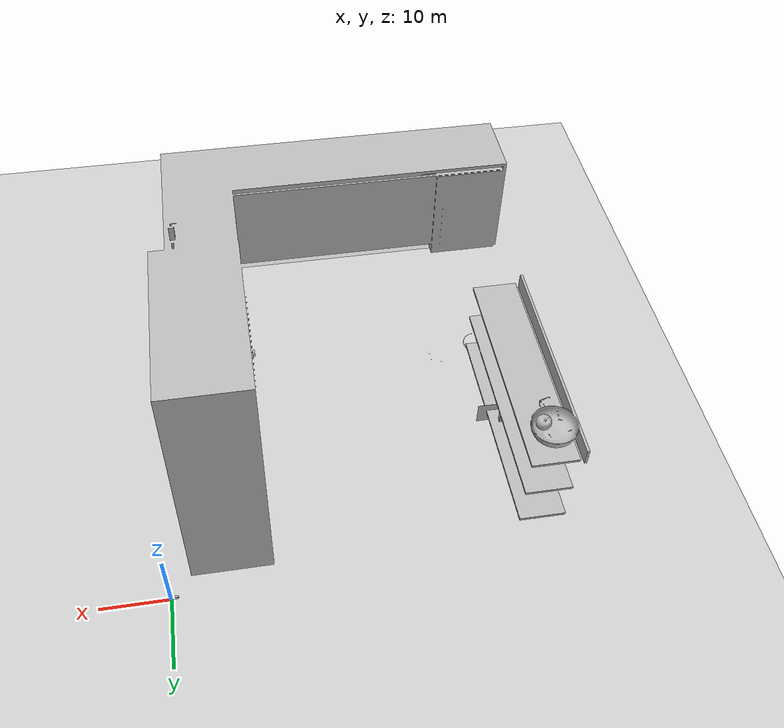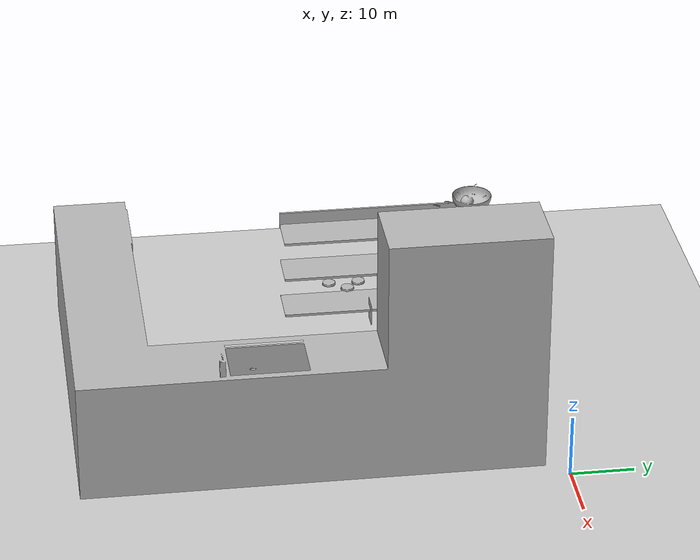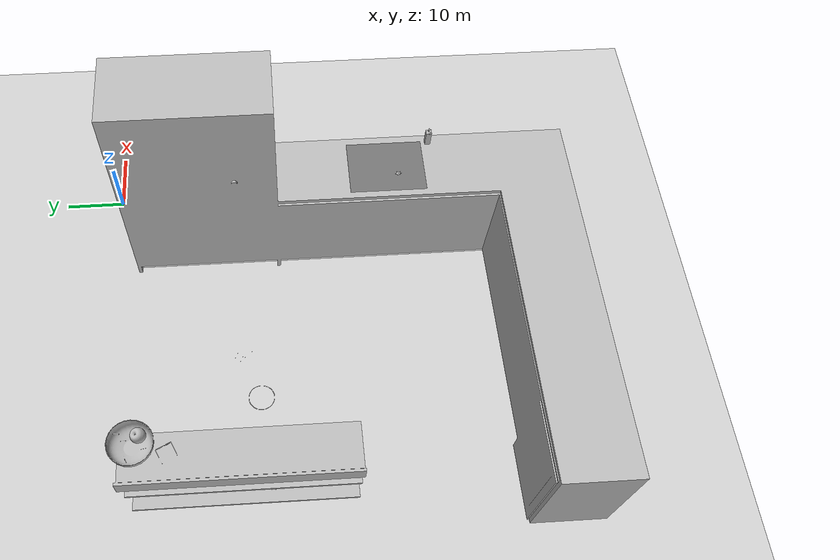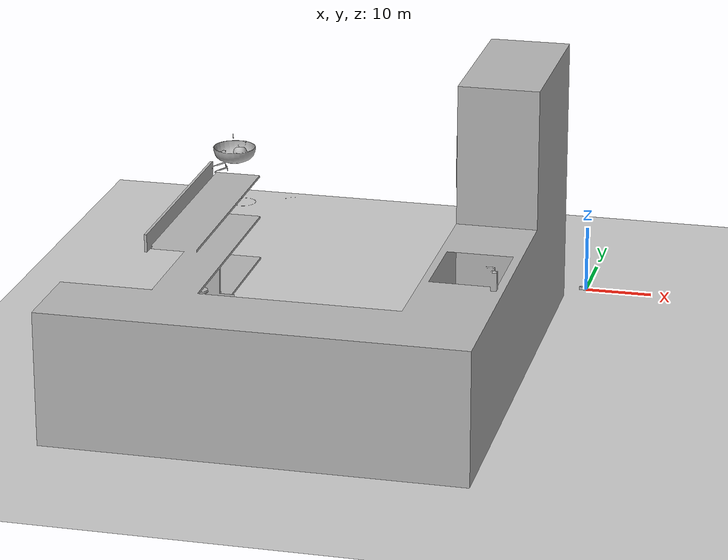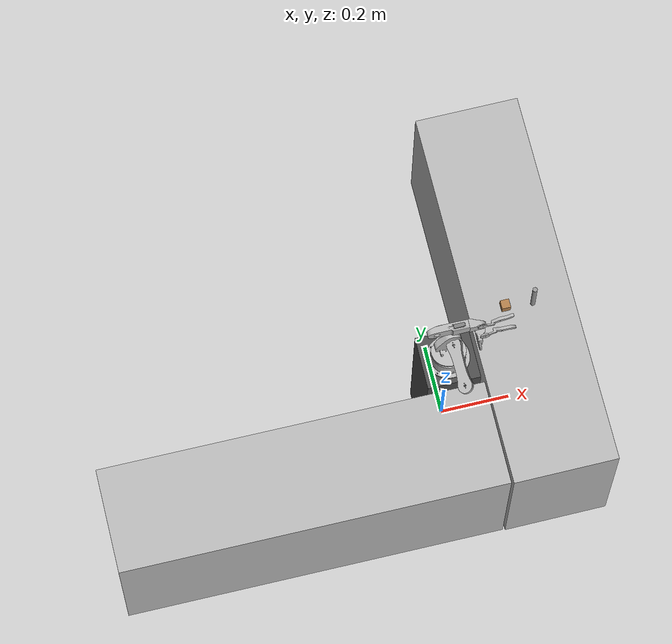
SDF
<sdf version="1.7">
 <world name="default">
  <light name="sun" type="directional">
   <pose>0 0 10 0 -0 0</pose>
   <diffuse>0.8 0.8 0.8 1</diffuse>
   <specular>0.2 0.2 0.2 1</specular>
   <attenuation>
    <range>1000</range>
    <constant>0.9</constant>
    <linear>0.01</linear>
    <quadratic>0.001</quadratic>
   </attenuation>
   <direction>-0.5 0.1 -0.9</direction>
   <spot><inner_angle>0</inner_angle><outer_angle>0</outer_angle><falloff>0</falloff></spot>
  </light>
  <model name="ground_plane">
   <static>1</static>
   <link name="link">
    <collision name="collision">
     <geometry><plane><normal>0 0 1</normal><size>100 100</size></plane></geometry>
     <surface>
      <contact><collide_bitmask>65535</collide_bitmask></contact>
      <friction><ode><mu>100</mu><mu2>50</mu2></ode></friction>
     </surface>
    </collision>
    <visual name="visual">
     <cast_shadows>0</cast_shadows>
     <geometry><plane><normal>0 0 1</normal><size>100 100</size></plane></geometry>
     <material>
      <script><uri>file://media/materials/scripts/gazebo.material</uri><name>Gazebo/Grey</name></script>
     </material>
    </visual>
   </link>
  </model>
  <gravity>0 0 -9.8</gravity>
  <magnetic_field>6e-06 2.3e-05 -4.2e-05</magnetic_field>
  <atmosphere type="adiabatic"/>
  <physics type="ode">
   <max_step_size>0.001</max_step_size>
   <real_time_factor>1</real_time_factor>
   <real_time_update_rate>1000</real_time_update_rate>
  </physics>
  <scene><ambient>0.4 0.4 0.4 1</ambient><background>0.7 0.7 0.7 1</background><shadows>1</shadows></scene>
  <spherical_coordinates>
   <surface_model>EARTH_WGS84</surface_model>
   <latitude_deg>0</latitude_deg>
   <longitude_deg>0</longitude_deg>
   <elevation>0</elevation>
   <heading_deg>0</heading_deg>
  </spherical_coordinates>
  <model name="kitchen">
   <static>1</static>
   <link name="kitchen">
    <visual name="visual">
     <geometry><mesh><uri>model://Kitchen/meshes/model.dae</uri><scale>0.5 0.5 0.5</scale></mesh></geometry>
    </visual>
   </link>
   <pose>0.467305 1.57082 0 0 0 -3.13984</pose>
  </model>
  <model name="kitchen_with_coll">
   <link name="link_0">
    <inertial>
     <mass>91.57</mass>
     <inertia><ixx>10.9134</ixx><ixy>0</ixy><ixz>0</ixz><iyy>2.44873</iyy><iyz>0</iyz><izz>9.81194</izz></inertia>
    </inertial>
    <pose>0.235405 0.162265 0.248636 0 -0 0.006368</pose>
    <visual name="visual"><geometry><box><size>0.297114 1.09433 0.482309</size></box></geometry></visual>
    <collision name="collision">
     <geometry><box><size>0.297114 1.09433 0.482309</size></box></geometry>
     <surface>
      <friction>
       <ode><mu>1</mu><mu2>1</mu2><fdir1>0 0 0</fdir1><slip1>0</slip1><slip2>0</slip2></ode>
       <torsional>
        <coefficient>1</coefficient>
        <patch_radius>0</patch_radius>
        <surface_radius>0</surface_radius>
        <use_patch_radius>1</use_patch_radius>
        <ode><slip>0</slip></ode>
       </torsional>
      </friction>
      <contact>
       <collide_without_contact>0</collide_without_contact>
       <collide_without_contact_bitmask>1</collide_without_contact_bitmask>
       <collide_bitmask>1</collide_bitmask>
       <ode>
        <soft_cfm>0</soft_cfm>
        <soft_erp>0.2</soft_erp>
        <kp>1e+13</kp>
        <kd>1</kd>
        <max_vel>0.01</max_vel>
        <min_depth>0</min_depth>
       </ode>
       <bullet>
        <split_impulse>1</split_impulse>
        <split_impulse_penetration_threshold>-0.01</split_impulse_penetration_threshold>
        <soft_cfm>0</soft_cfm>
        <soft_erp>0.2</soft_erp>
        <kp>1e+13</kp>
        <kd>1</kd>
       </bullet>
      </contact>
     </surface>
    </collision>
   </link>
   <link name="link_0_clone">
    <inertial>
     <mass>91.57</mass>
     <inertia><ixx>10.9134</ixx><ixy>0</ixy><ixz>0</ixz><iyy>2.44873</iyy><iyz>0</iyz><izz>9.81194</izz></inertia>
    </inertial>
    <pose>-0.463644 -0.234468 0.248636 0 -0 1.57049</pose>
    <visual name="visual"><geometry><box><size>0.297114 1.09433 0.482309</size></box></geometry></visual>
    <collision name="collision">
     <geometry><box><size>0.297114 1.09433 0.482309</size></box></geometry>
     <surface>
      <friction>
       <ode><mu>1</mu><mu2>1</mu2><fdir1>0 0 0</fdir1><slip1>0</slip1><slip2>0</slip2></ode>
       <torsional>
        <coefficient>1</coefficient>
        <patch_radius>0</patch_radius>
        <surface_radius>0</surface_radius>
        <use_patch_radius>1</use_patch_radius>
        <ode><slip>0</slip></ode>
       </torsional>
      </friction>
      <contact>
       <collide_without_contact>0</collide_without_contact>
       <collide_without_contact_bitmask>1</collide_without_contact_bitmask>
       <collide_bitmask>1</collide_bitmask>
       <ode>
        <soft_cfm>0</soft_cfm>
        <soft_erp>0.2</soft_erp>
        <kp>1e+13</kp>
        <kd>1</kd>
        <max_vel>0.01</max_vel>
        <min_depth>0</min_depth>
       </ode>
       <bullet>
        <split_impulse>1</split_impulse>
        <split_impulse_penetration_threshold>-0.01</split_impulse_penetration_threshold>
        <soft_cfm>0</soft_cfm>
        <soft_erp>0.2</soft_erp>
        <kp>1e+13</kp>
        <kd>1</kd>
       </bullet>
      </contact>
     </surface>
    </collision>
   </link>
   <static>0</static>
   <pose>-0 5e-06 -0.00748 -0 1.3e-05 -3e-06</pose>
  </model>
  <model name="wood_cube_2_5cm">
   <link name="link">
    <pose>0 0 0.0125 0 -0 0</pose>
    <inertial>
     <mass>0.0073</mass>
     <inertia>
      <ixx>7.60417e-07</ixx>
      <ixy>0</ixy>
      <ixz>0</ixz>
      <iyy>7.60417e-07</iyy>
      <iyz>0</iyz>
      <izz>7.60417e-07</izz>
     </inertia>
    </inertial>
    <collision name="collision">
     <geometry><box><size>0.025 0.025 0.025</size></box></geometry>
     <surface>
      <contact>
       <poissons_ratio>0.347</poissons_ratio>
       <elastic_modulus>8.8e+09</elastic_modulus>
       <ode><kp>100000</kp><kd>100</kd><max_vel>100</max_vel><min_depth>0.001</min_depth></ode>
      </contact>
      <friction>
       <torsional>
        <coefficient>1</coefficient>
        <use_patch_radius>0</use_patch_radius>
        <surface_radius>0.01</surface_radius>
       </torsional>
      </friction>
     </surface>
    </collision>
    <visual name="visual">
     <geometry><box><size>0.025 0.025 0.025</size></box></geometry>
     <material>
      <script><uri>file://media/materials/scripts/gazebo.material</uri><name>Gazebo/Wood</name></script>
     </material>
    </visual>
   </link>
   <pose>0.19205 0.112553 0.482307 1e-06 -1.6e-05 0.003125</pose>
  </model>
  <model name="robot">
   <joint name="joint_0" type="fixed">
    <pose relative_to="__model__">0 0 0 0 -0 0</pose>
    <parent>world</parent>
    <child>mums_assistant_pedestal_link</child>
   </joint>
   <link name="mums_assistant_pedestal_link">
    <pose relative_to="joint_0">0 0 0 0 -0 0</pose>
    <inertial>
     <mass>500</mass>
     <inertia><ixx>0.001</ixx><ixy>0</ixy><ixz>0</ixz><iyy>0.001</iyy><iyz>0</iyz><izz>0.001</izz></inertia>
    </inertial>
    <collision name="mums_assistant_pedestal_link_collision">
     <pose>0 0 0.25 0 -0 0</pose>
     <geometry><box><size>0.15 0.15 0.5</size></box></geometry>
    </collision>
    <visual name="mums_assistant_pedestal_link_visual">
     <pose>0 0 0.25 0 -0 0</pose>
     <geometry><box><size>0.15 0.15 0.5</size></box></geometry>
     <material>
      <script><name>Gazebo/DarkGray</name><uri>file://media/materials/scripts/gazebo.material</uri></script>
     </material>
    </visual>
   </link>
   <joint name="ma_to_pedestal" type="fixed">
    <pose relative_to="__model__">0 0 0.5 0 -0 0</pose>
    <parent>world</parent>
    <child>base_link</child>
   </joint>
   <link name="base_link">
    <pose relative_to="ma_to_pedestal">0 0 0 0 -0 0</pose>
    <inertial>
     <mass>10</mass>
     <inertia>
      <ixx>0.00013766</ixx>
      <ixy>-1.2679e-08</ixy>
      <ixz>-5.1003e-09</ixz>
      <iyy>0.00012799</iyy>
      <iyz>-3.914e-06</iyz>
      <izz>0.00020798</izz>
     </inertia>
    </inertial>
    <collision name="base_link_collision">
     <geometry>
      <mesh>
       <scale>1 1 1</scale>
       <uri>/home/mrinal/ros_ws/catkin_ws/src/mums_assistant/meshes/base_link.STL</uri>
      </mesh>
     </geometry>
    </collision>
    <visual name="base_link_visual">
     <geometry>
      <mesh>
       <scale>1 1 1</scale>
       <uri>/home/mrinal/ros_ws/catkin_ws/src/mums_assistant/meshes/base_link.STL</uri>
      </mesh>
     </geometry>
    </visual>
   </link>
   <joint name="joint_1" type="revolute">
    <pose relative_to="base_link">0 0 0.056 0 -0 0</pose>
    <parent>base_link</parent>
    <child>link_1</child>
    <axis>
     <xyz>0 0 1</xyz>
     <limit><lower>-1.57</lower><upper>1.57</upper><effort>0.92</effort><velocity>6.16</velocity></limit>
     <dynamics>
      <damping>0</damping>
      <friction>0</friction>
      <spring_reference>0</spring_reference>
      <spring_stiffness>0</spring_stiffness>
     </dynamics>
    </axis>
   </joint>
   <link name="link_1">
    <pose relative_to="joint_1">0 0 0 0 -0 0</pose>
    <inertial>
     <pose>0.001372 0.006435 0.017289 0 -0 0</pose>
     <mass>0.068038</mass>
     <inertia>
      <ixx>4.5018e-05</ixx>
      <ixy>-6.4176e-07</ixy>
      <ixz>-6.2428e-06</ixz>
      <iyy>5.8133e-05</iyy>
      <iyz>-5.1777e-06</iyz>
      <izz>5.4676e-05</izz>
     </inertia>
    </inertial>
    <collision name="link_1_collision">
     <geometry>
      <mesh><scale>1 1 1</scale><uri>/home/mrinal/ros_ws/catkin_ws/src/mums_assistant/meshes/link_1.STL</uri></mesh>
     </geometry>
    </collision>
    <visual name="link_1_visual">
     <geometry>
      <mesh><scale>1 1 1</scale><uri>/home/mrinal/ros_ws/catkin_ws/src/mums_assistant/meshes/link_1.STL</uri></mesh>
     </geometry>
    </visual>
    <self_collide>1</self_collide>
   </link>
   <joint name="joint_2" type="revolute">
    <pose relative_to="link_1">0.013919 0 0.040276 1.5708 -0.4325 0</pose>
    <parent>link_1</parent>
    <child>link_2</child>
    <axis>
     <xyz>0 0 1</xyz>
     <limit><lower>-1.57</lower><upper>1.57</upper><effort>0.92</effort><velocity>6.16</velocity></limit>
     <dynamics>
      <damping>0</damping>
      <friction>0</friction>
      <spring_reference>0</spring_reference>
      <spring_stiffness>0</spring_stiffness>
     </dynamics>
    </axis>
   </joint>
   <link name="link_2">
    <pose relative_to="joint_2">0 0 0 0 -0 0</pose>
    <inertial>
     <pose>-0.00013 0.05859 0.003769 0 -0 0</pose>
     <mass>0.064392</mass>
     <inertia>
      <ixx>0.00010704</ixx>
      <ixy>-1.6405e-09</ixy>
      <ixz>2.3498e-10</ixz>
      <iyy>9.11e-06</iyy>
      <iyz>2.3961e-07</iyz>
      <izz>0.00011184</izz>
     </inertia>
    </inertial>
    <collision name="link_2_collision">
     <geometry>
      <mesh><scale>1 1 1</scale><uri>/home/mrinal/ros_ws/catkin_ws/src/mums_assistant/meshes/link_2.STL</uri></mesh>
     </geometry>
    </collision>
    <visual name="link_2_visual">
     <geometry>
      <mesh><scale>1 1 1</scale><uri>/home/mrinal/ros_ws/catkin_ws/src/mums_assistant/meshes/link_2.STL</uri></mesh>
     </geometry>
    </visual>
    <self_collide>1</self_collide>
   </link>
   <joint name="joint_3" type="revolute">
    <pose relative_to="link_2">0 0.12 0 0 0 -0.41891</pose>
    <parent>link_2</parent>
    <child>link_3</child>
    <axis>
     <xyz>0 0 -1</xyz>
     <limit><lower>-1.57</lower><upper>1.57</upper><effort>0.92</effort><velocity>6.16</velocity></limit>
     <dynamics>
      <damping>0</damping>
      <friction>0</friction>
      <spring_reference>0</spring_reference>
      <spring_stiffness>0</spring_stiffness>
     </dynamics>
    </axis>
   </joint>
   <link name="link_3">
    <pose relative_to="joint_3">0 0 0 0 -0 0</pose>
    <inertial>
     <pose>0.039285 2.8e-05 -0.011409 0 -0 0</pose>
     <mass>0.050268</mass>
     <inertia>
      <ixx>9.2868e-06</ixx>
      <ixy>-6.9582e-08</ixy>
      <ixz>2.8754e-07</ixz>
      <iyy>5.4601e-05</iyy>
      <iyz>5.3527e-11</iyz>
      <izz>5.8149e-05</izz>
     </inertia>
    </inertial>
    <collision name="link_3_collision">
     <geometry>
      <mesh><scale>1 1 1</scale><uri>/home/mrinal/ros_ws/catkin_ws/src/mums_assistant/meshes/link_3.STL</uri></mesh>
     </geometry>
    </collision>
    <visual name="link_3_visual">
     <geometry>
      <mesh><scale>1 1 1</scale><uri>/home/mrinal/ros_ws/catkin_ws/src/mums_assistant/meshes/link_3.STL</uri></mesh>
     </geometry>
    </visual>
    <self_collide>1</self_collide>
   </link>
   <joint name="joint_4" type="revolute">
    <pose relative_to="link_3">0.089722 -0.0051 -0.0115 0 1.5695 -0.013594</pose>
    <parent>link_3</parent>
    <child>link_4</child>
    <axis>
     <xyz>0.001304 0.013594 0.99991</xyz>
     <limit><lower>-1.57</lower><upper>1.57</upper><effort>0.098</effort><velocity>8.73</velocity></limit>
     <dynamics>
      <damping>0</damping>
      <friction>0</friction>
      <spring_reference>0</spring_reference>
      <spring_stiffness>0</spring_stiffness>
     </dynamics>
    </axis>
   </joint>
   <link name="link_4">
    <pose relative_to="joint_4">0 0 0 0 -0 0</pose>
    <inertial>
     <pose>-0.005251 0.005279 0.017806 0 -0 0</pose>
     <mass>0.016499</mass>
     <inertia>
      <ixx>5.0238e-06</ixx>
      <ixy>5.8794e-09</ixy>
      <ixz>5.7259e-07</ixz>
      <iyy>3.9123e-06</iyy>
      <iyz>-5.0337e-09</iyz>
      <izz>2.6108e-06</izz>
     </inertia>
    </inertial>
    <collision name="link_4_collision">
     <geometry>
      <mesh><scale>1 1 1</scale><uri>/home/mrinal/ros_ws/catkin_ws/src/mums_assistant/meshes/link_4.STL</uri></mesh>
     </geometry>
    </collision>
    <visual name="link_4_visual">
     <geometry>
      <mesh><scale>1 1 1</scale><uri>/home/mrinal/ros_ws/catkin_ws/src/mums_assistant/meshes/link_4.STL</uri></mesh>
     </geometry>
    </visual>
    <self_collide>1</self_collide>
   </link>
   <joint name="joint_5" type="revolute">
    <pose relative_to="link_4">-0.007974 0.005366 0.027968 -1.4733 -1.5571 1.4752</pose>
    <parent>link_4</parent>
    <child>link_5</child>
    <axis>
     <xyz>0 0 1</xyz>
     <limit><lower>-1.57</lower><upper>1.57</upper><effort>0.098</effort><velocity>8.73</velocity></limit>
     <dynamics>
      <damping>0</damping>
      <friction>0</friction>
      <spring_reference>0</spring_reference>
      <spring_stiffness>0</spring_stiffness>
     </dynamics>
    </axis>
   </joint>
   <link name="link_5">
    <pose relative_to="joint_5">0 0 0 0 -0 0</pose>
    <inertial>
     <pose>0.005815 0.023551 0.015976 0 -0 0</pose>
     <mass>0.015721</mass>
     <inertia>
      <ixx>8.1159e-06</ixx>
      <ixy>-1.3638e-06</ixy>
      <ixz>-3.5027e-07</ixz>
      <iyy>2.5603e-06</iyy>
      <iyz>-1.4286e-06</iyz>
      <izz>7.2474e-06</izz>
     </inertia>
    </inertial>
    <collision name="link_5_collision">
     <geometry>
      <mesh><scale>1 1 1</scale><uri>/home/mrinal/ros_ws/catkin_ws/src/mums_assistant/meshes/link_5.STL</uri></mesh>
     </geometry>
    </collision>
    <visual name="link_5_visual">
     <geometry>
      <mesh><scale>1 1 1</scale><uri>/home/mrinal/ros_ws/catkin_ws/src/mums_assistant/meshes/link_5.STL</uri></mesh>
     </geometry>
    </visual>
    <self_collide>1</self_collide>
   </link>
   <joint name="gripper_joint_1" type="revolute">
    <pose relative_to="link_5">0.003329 0.038 0.031999 -1.5708 1.569 -1.5707</pose>
    <parent>link_5</parent>
    <child>gripper_link_1</child>
    <axis>
     <xyz>0 0 -1</xyz>
     <limit><lower>-1.57</lower><upper>0</upper><effort>0.05</effort><velocity>8.73</velocity></limit>
     <dynamics>
      <damping>0</damping>
      <friction>0</friction>
      <spring_reference>0</spring_reference>
      <spring_stiffness>0</spring_stiffness>
     </dynamics>
    </axis>
   </joint>
   <link name="gripper_link_1">
    <pose relative_to="gripper_joint_1">0 0 0 0 -0 0</pose>
    <inertial>
     <pose>0.005346 0.039496 0.009482 0 -0 0</pose>
     <mass>0.0096366</mass>
     <inertia>
      <ixx>2.2199e-06</ixx>
      <ixy>-2.3834e-07</ixy>
      <ixz>-1.3995e-11</ixz>
      <iyy>2.2636e-07</iyy>
      <iyz>-1.1442e-12</iyz>
      <izz>2.37e-06</izz>
     </inertia>
    </inertial>
    <collision name="gripper_link_1_collision">
     <geometry>
      <mesh>
       <scale>1 1 1</scale>
       <uri>/home/mrinal/ros_ws/catkin_ws/src/mums_assistant/meshes/gripper_link_1.STL</uri>
      </mesh>
     </geometry>
    </collision>
    <visual name="gripper_link_1_visual">
     <geometry>
      <mesh>
       <scale>1 1 1</scale>
       <uri>/home/mrinal/ros_ws/catkin_ws/src/mums_assistant/meshes/gripper_link_1.STL</uri>
      </mesh>
     </geometry>
    </visual>
    <self_collide>1</self_collide>
   </link>
   <joint name="gripper_joint_2" type="revolute">
    <pose relative_to="link_5">0.003343 0.038 0.004999 -1.5707 1.5689 -1.5689</pose>
    <parent>link_5</parent>
    <child>gripper_link_2</child>
    <axis>
     <xyz>0 0 1</xyz>
     <limit><lower>-1.57</lower><upper>0</upper><effort>0.05</effort><velocity>8.73</velocity></limit>
     <dynamics>
      <damping>0</damping>
      <friction>0</friction>
      <spring_reference>0</spring_reference>
      <spring_stiffness>0</spring_stiffness>
     </dynamics>
    </axis>
   </joint>
   <link name="gripper_link_2">
    <pose relative_to="gripper_joint_2">0 0 0 0 -0 0</pose>
    <inertial>
     <pose>-0.002488 0.039374 0.009468 0 -0 0</pose>
     <mass>0.0096366</mass>
     <inertia>
      <ixx>2.2128e-06</ixx>
      <ixy>1.8017e-07</ixy>
      <ixz>-1.3983e-11</ixz>
      <iyy>2.3348e-07</iyy>
      <iyz>1.1801e-12</iyz>
      <izz>2.37e-06</izz>
     </inertia>
    </inertial>
    <collision name="gripper_link_2_collision">
     <geometry>
      <mesh>
       <scale>1 1 1</scale>
       <uri>/home/mrinal/ros_ws/catkin_ws/src/mums_assistant/meshes/gripper_link_2.STL</uri>
      </mesh>
     </geometry>
    </collision>
    <visual name="gripper_link_2_visual">
     <geometry>
      <mesh>
       <scale>1 1 1</scale>
       <uri>/home/mrinal/ros_ws/catkin_ws/src/mums_assistant/meshes/gripper_link_2.STL</uri>
      </mesh>
     </geometry>
    </visual>
    <self_collide>1</self_collide>
   </link>
   <plugin name="gazebo_ros_control" filename="libgazebo_ros_control.so">
    <robotNamespace>/</robotNamespace>
   </plugin>
   <plugin name="joint_state_publisher" filename="libgazebo_ros_joint_state_publisher.so">
    <jointName>joint_1, joint_2, joint_3, joint_4, joint_5, gripper_joint_1, gripper_joint_2</jointName>
    <robotNamespace>/</robotNamespace>
   </plugin>
   <static>0</static>
   <plugin name="gazebo_grasp_fix" filename="libgazebo_grasp_fix.so">
    <arm>
     <arm_name>arm</arm_name>
     <palm_link>link_5</palm_link>
     <gripper_link>gripper_link_1</gripper_link>
     <gripper_link>gripper_link_2</gripper_link>
    </arm>
    <forces_angle_tolerance>100</forces_angle_tolerance>
    <update_rate>4</update_rate>
    <grip_count_threshold>4</grip_count_threshold>
    <max_grip_count>8</max_grip_count>
    <release_tolerance>0.005</release_tolerance>
    <disable_collisions_on_attach>0</disable_collisions_on_attach>
    <contact_topic>__default_topic__</contact_topic>
    <robotNamespace>/</robotNamespace>
   </plugin>
  </model>
  <model name="spoon_apna">
   <link name="link">
    <inertial>
     <mass>0.05</mass>
     <inertia><ixx>0.145833</ixx><ixy>0</ixy><ixz>0</ixz><iyy>0.145833</iyy><iyz>0</iyz><izz>0.125</izz></inertia>
    </inertial>
    <visual name="visual">
     <geometry><cylinder><radius>0.00663963</radius><length>0.114851</length></cylinder></geometry>
     <material>
      <script><name>Gazebo/Grey</name><uri>file://media/materials/scripts/gazebo.material</uri></script>
      <shader type="pixel"/>
     </material>
    </visual>
    <collision name="collision">
     <geometry><cylinder><radius>0.00664</radius><length>0.114851</length></cylinder></geometry>
     <surface>
      <friction>
       <ode><mu>1</mu><mu2>1</mu2><fdir1>0 0 0</fdir1><slip1>0</slip1><slip2>0</slip2></ode>
       <torsional>
        <coefficient>1</coefficient>
        <patch_radius>0</patch_radius>
        <surface_radius>0</surface_radius>
        <use_patch_radius>1</use_patch_radius>
        <ode><slip>0</slip></ode>
       </torsional>
      </friction>
      <bounce><restitution_coefficient>0</restitution_coefficient><threshold>1e+06</threshold></bounce>
      <contact>
       <collide_without_contact>0</collide_without_contact>
       <collide_without_contact_bitmask>1</collide_without_contact_bitmask>
       <collide_bitmask>1</collide_bitmask>
       <ode>
        <soft_cfm>0</soft_cfm>
        <soft_erp>0.2</soft_erp>
        <kp>1e+13</kp>
        <kd>1</kd>
        <max_vel>0.01</max_vel>
        <min_depth>0</min_depth>
       </ode>
       <bullet>
        <split_impulse>1</split_impulse>
        <split_impulse_penetration_threshold>-0.01</split_impulse_penetration_threshold>
        <soft_cfm>0</soft_cfm>
        <soft_erp>0.2</soft_erp>
        <kp>1e+13</kp>
        <kd>1</kd>
       </bullet>
      </contact>
     </surface>
    </collision>
   </link>
   <static>0</static>
   <pose>0.269187 0.104704 0.539739 -0.000612 -0.000927 -0.026981</pose>
  </model>
 </world>
</sdf>
